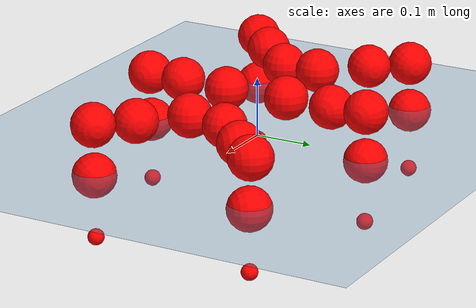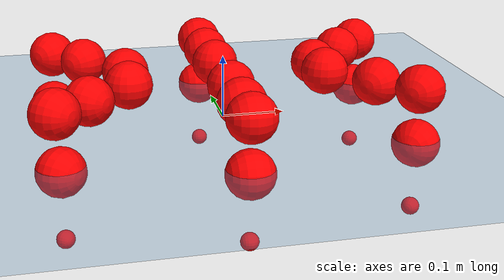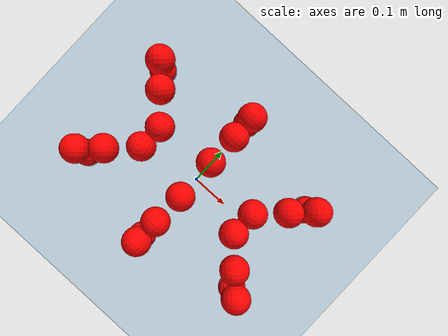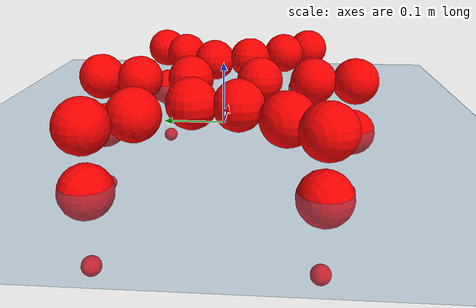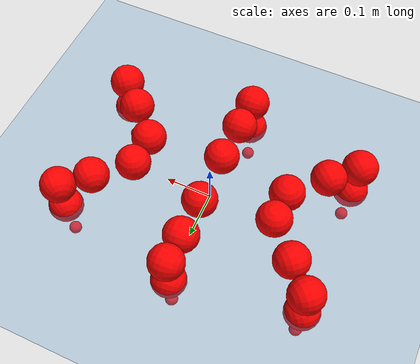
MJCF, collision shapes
<mujoco model="Golem">
  <compiler angle="radian" assetdir="assets" balanceinertia="true" inertiafromgeom="false"/>

  <option timestep="0.005" density="1.2" viscosity="2e-05"/>

  <size nkey="1"/>

  <visual>
    <quality shadowsize="8192"/>
    <map shadowclip="0.5"/>
  </visual>

  <default>
    <default class="/">
      <joint armature="0.01" damping="0.01" frictionloss="0.01"/>
      <geom contype="0" conaffinity="0" group="1" solref="-1000 -80"/>
      <site size="0.01 0.005 0.005" group="5"/>
      <general forcelimited="true" biastype="affine" gainprm="25" biasprm="0 -25 -0.5"/>
      <default class="visual">
        <geom type="mesh" group="2"/>
      </default>
      <default class="collision">
        <geom group="3"/>
      </default>
      <default class="foot">
        <geom size="0.01 0 0" condim="6" group="4" priority="1" solimp="0.015 1 0.01"/>
      </default>
      <default class="reward_collision_sphere">
        <geom group="5" rgba="1 0 0 1"/>
      </default>
    </default>
  </default>

  <asset>
    <texture type="skybox" colorspace="auto" name="//unnamed_texture_0" builtin="gradient" rgb1="0.95 0.95 0.95" rgb2="0.95 0.95 0.95" width="100" height="600"/>
    <texture type="2d" colorspace="auto" name="texplane" builtin="checker" rgb1="0.345 0.575 0.748" rgb2="0.345 0.575 0.748" markrgb="1 1 1" width="512" height="512"/>
    <material name="MatPlane" class="/" texture="texplane" texuniform="true" texrepeat="2 2" specular="0.9"/>
    <mesh name="body" class="/" file="body.stl" scale="0.001 0.001 0.001"/>
    <mesh name="coxa" class="/" file="coxa.stl" scale="0.001 0.001 0.001"/>
    <mesh name="femur" class="/" file="femur.stl" scale="0.001 0.001 0.001"/>
    <mesh name="tibia" class="/" file="tibia.stl" scale="0.001 0.001 0.001"/>
    <mesh name="tarsus" class="/" file="tarsus.stl" scale="0.001 0.001 0.001"/>
  </asset>

  <worldbody>
    <geom name="floor" class="/" size="100 100 0.125" type="plane" group="0" material="MatPlane"/>
    <light name="toplight_shadow" class="/" pos="0 0 5" dir="0.0990148 0.0990148 -0.990148" type="directional" ambient="0.04 0.04 0.04" diffuse="0.55 0.55 0.55" specular="0.12 0.12 0.12"/>
    <light name="toplight_fill" class="/" pos="0 0 5" dir="0.0990148 0.0990148 -0.990148" type="directional" castshadow="false" ambient="0.04 0.04 0.04" diffuse="0.3 0.3 0.3" specular="0.08 0.08 0.08"/>
    <body name="trunk" pos="0.00105749 -0.00107535 0.000803252" quat="1 0.000395352 2.02677e-05 2.25357e-05">
      <inertial pos="0.00300132 -0.00103659 -0.00141902" quat="0.999974 -0.00553701 0.00141315 0.00436423" mass="3.0956" diaginertia="0.0104544 0.00110543 0.0211578"/>
      <joint name="//unnamed_joint_0" type="free"/>
      <geom name="//unnamed_geom_1" class="/" pos="0 0 0.0734904" quat="1 0 0 0" type="mesh" rgba="0.9 0.9 0.9 1" mesh="body"/>
      <site name="imu" class="/" pos="0.127554 -0.00516973 0.101249" size="0.00928628"/>
      <camera name="track" class="/" pos="0 -1.28286 0" quat="0.707107 0.707107 0 0" mode="trackcom"/>
      <camera name="ego_camera" class="/" pos="0.129502 0 0.114829" quat="-0.5 -0.5 0.5 0.5"/>
      <body name="coxa_RR" pos="-0.176123 -0.0530487 0.0733845" quat="0.382684 8.95312e-07 2.45664e-07 -0.923879">
        <inertial pos="0.000424511 -0.00148022 0.000727211" quat="0.999999 -0.000126912 0.000140478 -0.000988118" mass="0.158359" diaginertia="0.00959094 0.00104727 0.0196992"/>
        <joint name="coxa_joint_RR" class="/" pos="0 0 0" axis="0.00816392 -0.00201679 -0.999965" range="-3.18113 3.13561" armature="0.0089253" damping="0" frictionloss="0.00938397"/>
        <geom name="//unnamed_geom_2" class="/" type="mesh" rgba="0.2 0.2 0.2 1" mesh="coxa"/>
        <geom name="//unnamed_geom_3" class="reward_collision_sphere" size="0.0371451" pos="-0.029885 0 0"/>
        <body name="femur_RR" pos="0.0621362 0.00125198 0.00174927" quat="0.500369 -0.500177 0.500104 0.499349">
          <inertial pos="-0.000851528 0.000187033 -0.00168174" quat="0.999997 -0.000105895 0.00209826 -0.00156919" mass="0.156686" diaginertia="0.00979124 0.00105565 0.0196048"/>
          <joint name="femur_joint_RR" class="/" pos="0 0 0" axis="-0.0086246 -0.0120374 -0.99989" stiffness="0.00153049" range="-3.1404 3.13549" armature="0.00931687" damping="0.0030276" frictionloss="0.0096473"/>
          <geom name="//unnamed_geom_4" class="/" type="mesh" rgba="0.9 0.9 0.9 1" mesh="femur"/>
          <geom name="//unnamed_geom_5" class="reward_collision_sphere" size="0.0371451"/>
          <body name="tibia_RR" pos="-0.00169071 -0.069314 -0.00164852" quat="-2.91479e-06 1 6.21915e-07 3.48941e-06">
            <inertial pos="0.000184229 -0.00252236 -0.000121133" quat="0.999915 -0.0102546 0.00468742 0.00658328" mass="0.159975" diaginertia="0.0100882 0.00107559 0.0196146"/>
            <joint name="tibia_joint_RR" class="/" pos="0 0 0" axis="0.012623 -0.00281144 0.999916" range="-3.09572 3.15443" armature="0.00912947" damping="0.0134361" frictionloss="0.00917732"/>
            <geom name="//unnamed_geom_6" class="/" type="mesh" rgba="0.2 0.2 0.2 1" mesh="tibia"/>
            <geom name="//unnamed_geom_7" class="reward_collision_sphere" size="0.0371451"/>
            <body name="tarsus_RR" pos="0.0881672 -0.00253384 -0.00216246" quat="1 -0.000678373 -0.000363827 -1.71176e-05">
              <inertial pos="0.0597642 7.27551e-05 -0.00228494" quat="0.507198 0.48911 0.504359 0.499142" mass="0.165967" diaginertia="0.00999193 0.00110989 0.0193888"/>
              <joint name="tarsus_joint_RR" class="/" pos="0 0 0" axis="0.00081136 -0.0025664 0.999996" range="-3.18278 3.15936" armature="0.00948174" damping="0" frictionloss="0.0105054"/>
              <geom name="//unnamed_geom_8" class="/" type="mesh" rgba="0.9 0.9 0.9 1" mesh="tarsus"/>
              <geom name="foot_1" class="foot" size="0.00972259" pos="0.111571 0 0" quat="0 -0.707107 0 0.707107"/>
              <geom name="//unnamed_geom_10" class="reward_collision_sphere" size="0.0371451"/>
              <geom name="//unnamed_geom_11" class="reward_collision_sphere" size="0.0139294" pos="0.107088 0 0"/>
              <site name="foot_1" class="foot" pos="0.111571 0 0" quat="0 -0.707107 0 0.707107" size="0.00928628"/>
            </body>
          </body>
        </body>
      </body>
      <body name="coxa_RM" pos="-0.00088544 -0.0874811 0.0722027" quat="0.707381 0.000862053 0.000425065 -0.706832">
        <inertial pos="0.00256606 0.000637252 -0.00233528" quat="1 -0.000304108 0.000154947 0.000246454" mass="0.161202" diaginertia="0.00976007 0.00112119 0.0199795"/>
        <joint name="coxa_joint_RM" class="/" pos="0 0 0" axis="-0.00241207 0.00463757 -0.999986" range="-3.14426 3.13727" armature="0.0104774" damping="0.0164786" frictionloss="0.00934899"/>
        <geom name="//unnamed_geom_12" class="/" type="mesh" rgba="0.2 0.2 0.2 1" mesh="coxa"/>
        <geom name="//unnamed_geom_13" class="reward_collision_sphere" size="0.0371451" pos="-0.029885 0 0"/>
        <body name="femur_RM" pos="0.0563515 -0.00316924 0.00153409" quat="0.499861 -0.499525 0.500566 0.500048">
          <inertial pos="0.00259773 -0.00212085 0.000335262" quat="1 -0.000297887 0.000102206 -0.000260976" mass="0.154979" diaginertia="0.00914663 0.0010442 0.018638"/>
          <joint name="femur_joint_RM" class="/" pos="0 0 0" axis="0.0111219 -0.00281866 -0.999934" stiffness="0.00116702" range="-3.13441 3.08422" armature="0.00898119" damping="0.0235008" frictionloss="0.00860313"/>
          <geom name="//unnamed_geom_14" class="/" type="mesh" rgba="0.9 0.9 0.9 1" mesh="femur"/>
          <geom name="//unnamed_geom_15" class="reward_collision_sphere" size="0.0371451"/>
          <body name="tibia_RM" pos="-0.00112143 -0.0667279 -0.00120956" quat="0.00047488 1 -0.000526001 -0.00062685">
            <inertial pos="-0.00197262 0.00249806 -0.000376331" quat="0.999959 -0.00685213 0.00587317 -0.000803893" mass="0.154751" diaginertia="0.00961516 0.00106433 0.0195149"/>
            <joint name="tibia_joint_RM" class="/" pos="0 0 0" axis="-0.00319811 -0.00328043 0.99999" range="-3.13254 3.17938" armature="0.00946536" damping="0.0210997" frictionloss="0.00922142"/>
            <geom name="//unnamed_geom_16" class="/" type="mesh" rgba="0.2 0.2 0.2 1" mesh="tibia"/>
            <geom name="//unnamed_geom_17" class="reward_collision_sphere" size="0.0371451"/>
            <body name="tarsus_RM" pos="0.0851675 -0.000787532 0.000674878" quat="1 -1.44838e-05 8.87974e-05 5.95679e-05">
              <inertial pos="0.0625355 0.000459709 -0.000154497" quat="0.498995 0.49974 0.499845 0.501417" mass="0.164662" diaginertia="0.00979855 0.00107905 0.0205828"/>
              <joint name="tarsus_joint_RM" class="/" pos="0 0 0" axis="-0.00303662 -0.00279398 0.999991" range="-3.19094 3.08437" armature="0.00939863" damping="0.00574932" frictionloss="0.00809063"/>
              <geom name="//unnamed_geom_18" class="/" type="mesh" rgba="0.9 0.9 0.9 1" mesh="tarsus"/>
              <geom name="foot_2" class="foot" size="0.0100919" pos="0.111571 0 0" quat="0 -0.707107 0 0.707107"/>
              <geom name="//unnamed_geom_20" class="reward_collision_sphere" size="0.0371451"/>
              <geom name="//unnamed_geom_21" class="reward_collision_sphere" size="0.0139294" pos="0.107088 0 0"/>
              <site name="foot_2" class="foot" pos="0.111571 0 0" quat="0 -0.707107 0 0.707107" size="0.00928628"/>
            </body>
          </body>
        </body>
      </body>
      <body name="coxa_RF" pos="0.177265 -0.0564198 0.0768019" quat="0.923782 1.33503e-05 0.000102199 -0.38292">
        <inertial pos="0.00106328 -0.00275827 0.00273662" quat="0.999906 0.000559483 -0.00667845 0.0119407" mass="0.150238" diaginertia="0.00948768 0.00105571 0.0193858"/>
        <joint name="coxa_joint_RF" class="/" pos="0 0 0" axis="-0.00724578 0.00710421 -0.999949" range="-3.08538 3.16445" armature="0.00799518" damping="0" frictionloss="0.00904017"/>
        <geom name="//unnamed_geom_22" class="/" type="mesh" rgba="0.2 0.2 0.2 1" mesh="coxa"/>
        <geom name="//unnamed_geom_23" class="reward_collision_sphere" size="0.0371451" pos="-0.029885 0 0"/>
        <body name="femur_RF" pos="0.0595496 -0.00139966 -0.00118895" quat="0.499955 -0.500149 0.499796 0.500099">
          <inertial pos="-0.00240838 0.00260737 0.000209635" quat="0.999997 0.00225228 0.000729055 0.000975907" mass="0.159652" diaginertia="0.0100014 0.0011268 0.0206901"/>
          <joint name="femur_joint_RF" class="/" pos="0 0 0" axis="0.00291493 0.00145866 -0.999995" range="-3.13287 3.11613" armature="0.00920137" damping="0.00380882" frictionloss="0.00878377"/>
          <geom name="//unnamed_geom_24" class="/" type="mesh" rgba="0.9 0.9 0.9 1" mesh="femur"/>
          <geom name="//unnamed_geom_25" class="reward_collision_sphere" size="0.0371451"/>
          <body name="tibia_RF" pos="-0.000315342 -0.0708605 0.000428664" quat="3.49896e-06 1 4.32682e-06 3.59286e-06">
            <inertial pos="-9.0681e-05 0.000360686 -0.00254254" quat="0.999905 0.00818495 -0.0107292 -0.00275906" mass="0.159946" diaginertia="0.00996069 0.00105405 0.0207329"/>
            <joint name="tibia_joint_RF" class="/" pos="0 0 0" axis="0.0014154 -0.000911835 0.999999" range="-3.14837 3.16767" armature="0.00950585" damping="0.00498379" frictionloss="0.0100321"/>
            <geom name="//unnamed_geom_26" class="/" type="mesh" rgba="0.2 0.2 0.2 1" mesh="tibia"/>
            <geom name="//unnamed_geom_27" class="reward_collision_sphere" size="0.0371451"/>
            <body name="tarsus_RF" pos="0.0869243 -0.000397983 0.000305586" quat="0.999999 0.000798837 0.000962658 -0.000152562">
              <inertial pos="0.059 -0.00089727 -0.000589058" quat="0.501746 0.500468 0.498498 0.499282" mass="0.163895" diaginertia="0.0100911 0.00107247 0.0197676"/>
              <joint name="tarsus_joint_RF" class="/" pos="0 0 0" axis="0.00181903 -0.008554 0.999962" stiffness="0.023031" range="-3.08831 3.14057" armature="0.00867396" damping="0" frictionloss="0.0087865"/>
              <geom name="//unnamed_geom_28" class="/" type="mesh" rgba="0.9 0.9 0.9 1" mesh="tarsus"/>
              <geom name="foot_3" class="foot" size="0.00933001" pos="0.111571 0 0" quat="0 -0.707107 0 0.707107"/>
              <geom name="//unnamed_geom_30" class="reward_collision_sphere" size="0.0371451"/>
              <geom name="//unnamed_geom_31" class="reward_collision_sphere" size="0.0139294" pos="0.107088 0 0"/>
              <site name="foot_3" class="foot" pos="0.111571 0 0" quat="0 -0.707107 0 0.707107" size="0.00928628"/>
            </body>
          </body>
        </body>
      </body>
      <body name="coxa_LR" pos="-0.174441 0.0548181 0.074397" quat="0.382714 7.47617e-05 7.72736e-05 0.923867">
        <inertial pos="-0.00220679 -0.00294936 0.00093524" quat="0.999919 0.00636967 0.00992374 0.00476946" mass="0.153197" diaginertia="0.00979732 0.00102056 0.0187629"/>
        <joint name="coxa_joint_LR" class="/" pos="0 0 0" axis="5.38707e-05 -9.98161e-05 -1" stiffness="0.00305814" range="-3.17096 3.15755" armature="0.00955774" damping="0.0173256" frictionloss="0.00930413"/>
        <geom name="//unnamed_geom_32" class="/" type="mesh" rgba="0.2 0.2 0.2 1" mesh="coxa"/>
        <geom name="//unnamed_geom_33" class="reward_collision_sphere" size="0.0371451" pos="-0.029885 0 0"/>
        <body name="femur_LR" pos="0.0617296 -0.00421602 0.000588181" quat="0.499764 -0.499991 0.500111 0.500134">
          <inertial pos="-0.000751675 -0.00235298 -0.00115526" quat="1 0.000417551 0.000352516 -0.000215171" mass="0.158736" diaginertia="0.00946617 0.00111456 0.0192937"/>
          <joint name="femur_joint_LR" class="/" pos="0 0 0" axis="-0.000865542 -0.000383771 1" range="-3.08517 3.14764" armature="0.00964427" damping="0.00325798" frictionloss="0.00929396"/>
          <geom name="//unnamed_geom_34" class="/" type="mesh" rgba="0.9 0.9 0.9 1" mesh="femur"/>
          <geom name="//unnamed_geom_35" class="reward_collision_sphere" size="0.0371451"/>
          <body name="tibia_LR" pos="0.000745179 -0.07294 -0.00302391" quat="-0.000409019 1 -0.000532199 0.000426512">
            <inertial pos="0.00159066 -0.00258876 -0.000821774" quat="0.999905 0.00809871 -0.0108395 -0.00260139" mass="0.156373" diaginertia="0.00936905 0.0010486 0.0197363"/>
            <joint name="tibia_joint_LR" class="/" pos="0 0 0" axis="-0.00279096 0.00149543 -0.999995" range="-3.1093 3.19409" armature="0.00913063" damping="0" frictionloss="0.00923092"/>
            <geom name="//unnamed_geom_36" class="/" type="mesh" rgba="0.2 0.2 0.2 1" mesh="tibia"/>
            <geom name="//unnamed_geom_37" class="reward_collision_sphere" size="0.0371451"/>
            <body name="tarsus_LR" pos="0.0863925 0.00157507 -0.00198838" quat="0.999999 0.000145217 -0.000147897 0.00115487">
              <inertial pos="0.0616026 -0.00235781 -0.00257513" quat="0.500674 0.500585 0.500813 0.497922" mass="0.161388" diaginertia="0.00989638 0.0010696 0.0193188"/>
              <joint name="tarsus_joint_LR" class="/" pos="0 0 0" axis="-0.0140998 0.00625638 -0.999881" range="-3.15271 3.1022" armature="0.008211" damping="0" frictionloss="0.00844882"/>
              <geom name="//unnamed_geom_38" class="/" type="mesh" rgba="0.9 0.9 0.9 1" mesh="tarsus"/>
              <geom name="foot_4" class="foot" size="0.0101644" pos="0.111571 0 0" quat="0.707107 0 -0.707107 0"/>
              <geom name="//unnamed_geom_40" class="reward_collision_sphere" size="0.0371451"/>
              <geom name="//unnamed_geom_41" class="reward_collision_sphere" size="0.0139294" pos="0.107088 0 0"/>
              <site name="foot_4" class="foot" pos="0.111571 0 0" quat="0.707107 0 -0.707107 0" size="0.00928628"/>
            </body>
          </body>
        </body>
      </body>
      <body name="coxa_LM" pos="-0.00317226 0.084739 0.073833" quat="0.706953 4.07714e-05 0.00020969 0.707261">
        <inertial pos="0.000632863 -0.00242997 0.000601066" quat="0.999905 -0.0113141 0.00544795 0.00571388" mass="0.159724" diaginertia="0.0100793 0.00111721 0.0205121"/>
        <joint name="coxa_joint_LM" class="/" pos="0 0 0" axis="0.0074628 -0.00911925 -0.999931" range="-3.12866 3.12059" armature="0.00913252" damping="0.0138383" frictionloss="0.0101637"/>
        <geom name="//unnamed_geom_42" class="/" type="mesh" rgba="0.2 0.2 0.2 1" mesh="coxa"/>
        <geom name="//unnamed_geom_43" class="reward_collision_sphere" size="0.0371451" pos="-0.029885 0 0"/>
        <body name="femur_LM" pos="0.0544323 -0.000135025 -0.00154757" quat="0.499888 -0.500136 0.499715 0.500261">
          <inertial pos="0.00229593 0.000782831 0.000646233" quat="0.99992 0.00539237 -0.00771675 -0.0084887" mass="0.166654" diaginertia="0.00977569 0.00115743 0.0207004"/>
          <joint name="femur_joint_LM" class="/" pos="0 0 0" axis="-0.00340885 -0.000766085 0.999994" range="-3.15051 3.13047" armature="0.00991686" damping="0.00926835" frictionloss="0.00822348"/>
          <geom name="//unnamed_geom_44" class="/" type="mesh" rgba="0.9 0.9 0.9 1" mesh="femur"/>
          <geom name="//unnamed_geom_45" class="reward_collision_sphere" size="0.0371451"/>
          <body name="tibia_LM" pos="-0.00224188 -0.063811 -2.87684e-05" quat="-0.000373704 0.999999 -0.000741708 -0.000912015">
            <inertial pos="0.00193389 0.000338713 -0.00276308" quat="0.999905 0.00180383 -0.000723527 0.0136583" mass="0.162159" diaginertia="0.00990088 0.00113479 0.020388"/>
            <joint name="tibia_joint_LM" class="/" pos="0 0 0" axis="-0.00844817 -0.00411398 -0.999956" range="-3.13892 3.14087" armature="0.00933657" damping="0.00149636" frictionloss="0.00804878"/>
            <geom name="//unnamed_geom_46" class="/" type="mesh" rgba="0.2 0.2 0.2 1" mesh="tibia"/>
            <geom name="//unnamed_geom_47" class="reward_collision_sphere" size="0.0371451"/>
            <body name="tarsus_LM" pos="0.0847817 0.000426286 -0.000402605" quat="0.999999 0.00108843 0.000229428 -0.000461075">
              <inertial pos="0.0601931 -0.000273706 0.00154636" quat="0.491093 0.508195 0.504902 0.49562" mass="0.167054" diaginertia="0.0101904 0.00109101 0.0201478"/>
              <joint name="tarsus_joint_LM" class="/" pos="0 0 0" axis="0.00959011 -0.00568131 -0.999938" stiffness="0.00778857" range="-3.15009 3.14482" armature="0.00936535" damping="0" frictionloss="0.0105682"/>
              <geom name="//unnamed_geom_48" class="/" type="mesh" rgba="0.9 0.9 0.9 1" mesh="tarsus"/>
              <geom name="foot_5" class="foot" size="0.00939413" pos="0.111571 0 0" quat="0.707107 0 -0.707107 0"/>
              <geom name="//unnamed_geom_50" class="reward_collision_sphere" size="0.0371451"/>
              <geom name="//unnamed_geom_51" class="reward_collision_sphere" size="0.0139294" pos="0.107088 0 0"/>
              <site name="foot_5" class="foot" pos="0.111571 0 0" quat="0.707107 0 -0.707107 0" size="0.00928628"/>
            </body>
          </body>
        </body>
      </body>
      <body name="coxa_LF" pos="0.179762 0.0523332 0.0719875" quat="0.923979 -0.000309544 0.000203537 0.382444">
        <inertial pos="0.000163097 -4.19605e-05 0.00285684" quat="0.999922 0.00583125 0.00695585 -0.00858179" mass="0.155652" diaginertia="0.00944062 0.00111935 0.0193665"/>
        <joint name="coxa_joint_LF" class="/" pos="0 0 0" axis="0.00126123 -0.0167094 -0.99986" range="-3.1178 3.14513" armature="0.00797493" damping="0" frictionloss="0.0103783"/>
        <geom name="//unnamed_geom_52" class="/" type="mesh" rgba="0.2 0.2 0.2 1" mesh="coxa"/>
        <geom name="//unnamed_geom_53" class="reward_collision_sphere" size="0.0371451" pos="-0.029885 0 0"/>
        <body name="femur_LF" pos="0.0584758 3.27175e-05 0.000808683" quat="0.500225 -0.500027 0.499786 0.499962">
          <inertial pos="-0.00250668 -0.000932011 0.00229459" quat="0.999999 -0.000305008 0.000863163 0.00116566" mass="0.158593" diaginertia="0.0101772 0.00107756 0.0200016"/>
          <joint name="femur_joint_LF" class="/" pos="0 0 0" axis="-3.59408e-05 -1.54582e-05 1" range="-3.13329 3.13801" armature="0.0101681" damping="0.00522718" frictionloss="0.00888687"/>
          <geom name="//unnamed_geom_54" class="/" type="mesh" rgba="0.9 0.9 0.9 1" mesh="femur"/>
          <geom name="//unnamed_geom_55" class="reward_collision_sphere" size="0.0371451"/>
          <body name="tibia_LF" pos="-0.000643406 -0.0688049 -0.000596176" quat="-0.0007153 1 -8.2033e-05 -0.000513957">
            <inertial pos="-0.00061864 -0.0021761 0.00117898" quat="1 -8.48697e-05 -0.000695495 -4.18325e-05" mass="0.156273" diaginertia="0.0092229 0.00105884 0.0193589"/>
            <joint name="tibia_joint_LF" class="/" pos="0 0 0" axis="0.000312384 0.000106176 -1" range="-3.14963 3.12185" armature="0.0104689" damping="0" frictionloss="0.00954113"/>
            <geom name="//unnamed_geom_56" class="/" type="mesh" rgba="0.2 0.2 0.2 1" mesh="tibia"/>
            <geom name="//unnamed_geom_57" class="reward_collision_sphere" size="0.0371451"/>
            <body name="tarsus_LF" pos="0.0852377 -0.000219842 0.00200506" quat="1 -0.000442551 -0.000168359 6.54125e-06">
              <inertial pos="0.0592061 0.0022288 0.00101049" quat="0.495867 0.508776 0.498231 0.49702" mass="0.150257" diaginertia="0.00954236 0.00101748 0.0195191"/>
              <joint name="tarsus_joint_LF" class="/" pos="0 0 0" axis="-0.00248477 0.00347154 -0.999991" range="-3.15869 3.14229" armature="0.0106261" damping="0.00769783" frictionloss="0.00810379"/>
              <geom name="//unnamed_geom_58" class="/" type="mesh" rgba="0.9 0.9 0.9 1" mesh="tarsus"/>
              <geom name="foot_6" class="foot" size="0.00927067" pos="0.111571 0 0" quat="0.707107 0 -0.707107 0"/>
              <geom name="//unnamed_geom_60" class="reward_collision_sphere" size="0.0371451"/>
              <geom name="//unnamed_geom_61" class="reward_collision_sphere" size="0.0139294" pos="0.107088 0 0"/>
              <site name="foot_6" class="foot" pos="0.111571 0 0" quat="0.707107 0 -0.707107 0" size="0.00928628"/>
            </body>
          </body>
        </body>
      </body>
    </body>
  </worldbody>

  <contact>
    <pair class="/" geom1="floor" geom2="foot_1" name="//unnamed_contact_0"/>
    <pair class="/" geom1="floor" geom2="foot_2" name="//unnamed_contact_1"/>
    <pair class="/" geom1="floor" geom2="foot_3" name="//unnamed_contact_2"/>
    <pair class="/" geom1="floor" geom2="foot_4" name="//unnamed_contact_3"/>
    <pair class="/" geom1="floor" geom2="foot_5" name="//unnamed_contact_4"/>
    <pair class="/" geom1="floor" geom2="foot_6" name="//unnamed_contact_5"/>
  </contact>

  <actuator>
    <general name="coxa_joint_RR" class="/" joint="coxa_joint_RR" forcerange="-6.77308 6.77308" gainprm="23.7757" biasprm="0 -23.7757 -0.484048"/>
    <general name="femur_joint_RR" class="/" joint="femur_joint_RR" forcerange="-6.92495 6.92495" gainprm="23.7757" biasprm="0 -23.7757 -0.484048"/>
    <general name="tibia_joint_RR" class="/" joint="tibia_joint_RR" forcerange="-6.91186 6.91186" gainprm="23.7757" biasprm="0 -23.7757 -0.484048"/>
    <general name="tarsus_joint_RR" class="/" joint="tarsus_joint_RR" forcerange="-7.48238 7.48238" gainprm="23.7757" biasprm="0 -23.7757 -0.484048"/>
    <general name="coxa_joint_RM" class="/" joint="coxa_joint_RM" forcerange="-6.6116 6.6116" gainprm="23.7757" biasprm="0 -23.7757 -0.484048"/>
    <general name="femur_joint_RM" class="/" joint="femur_joint_RM" forcerange="-6.76792 6.76792" gainprm="23.7757" biasprm="0 -23.7757 -0.484048"/>
    <general name="tibia_joint_RM" class="/" joint="tibia_joint_RM" forcerange="-6.79355 6.79355" gainprm="23.7757" biasprm="0 -23.7757 -0.484048"/>
    <general name="tarsus_joint_RM" class="/" joint="tarsus_joint_RM" forcerange="-7.44863 7.44863" gainprm="23.7757" biasprm="0 -23.7757 -0.484048"/>
    <general name="coxa_joint_RF" class="/" joint="coxa_joint_RF" forcerange="-7.15116 7.15116" gainprm="23.7757" biasprm="0 -23.7757 -0.484048"/>
    <general name="femur_joint_RF" class="/" joint="femur_joint_RF" forcerange="-6.09046 6.09046" gainprm="23.7757" biasprm="0 -23.7757 -0.484048"/>
    <general name="tibia_joint_RF" class="/" joint="tibia_joint_RF" forcerange="-7.30809 7.30809" gainprm="23.7757" biasprm="0 -23.7757 -0.484048"/>
    <general name="tarsus_joint_RF" class="/" joint="tarsus_joint_RF" forcerange="-6.19599 6.19599" gainprm="23.7757" biasprm="0 -23.7757 -0.484048"/>
    <general name="coxa_joint_LR" class="/" joint="coxa_joint_LR" forcerange="-6.32291 6.32291" gainprm="23.7757" biasprm="0 -23.7757 -0.484048"/>
    <general name="femur_joint_LR" class="/" joint="femur_joint_LR" forcerange="-6.88588 6.88588" gainprm="23.7757" biasprm="0 -23.7757 -0.484048"/>
    <general name="tibia_joint_LR" class="/" joint="tibia_joint_LR" forcerange="-6.81484 6.81484" gainprm="23.7757" biasprm="0 -23.7757 -0.484048"/>
    <general name="tarsus_joint_LR" class="/" joint="tarsus_joint_LR" forcerange="-6.31538 6.31538" gainprm="23.7757" biasprm="0 -23.7757 -0.484048"/>
    <general name="coxa_joint_LM" class="/" joint="coxa_joint_LM" forcerange="-7.05246 7.05246" gainprm="23.7757" biasprm="0 -23.7757 -0.484048"/>
    <general name="femur_joint_LM" class="/" joint="femur_joint_LM" forcerange="-6.2541 6.2541" gainprm="23.7757" biasprm="0 -23.7757 -0.484048"/>
    <general name="tibia_joint_LM" class="/" joint="tibia_joint_LM" forcerange="-6.71376 6.71376" gainprm="23.7757" biasprm="0 -23.7757 -0.484048"/>
    <general name="tarsus_joint_LM" class="/" joint="tarsus_joint_LM" forcerange="-7.0451 7.0451" gainprm="23.7757" biasprm="0 -23.7757 -0.484048"/>
    <general name="coxa_joint_LF" class="/" joint="coxa_joint_LF" forcerange="-6.07838 6.07838" gainprm="23.7757" biasprm="0 -23.7757 -0.484048"/>
    <general name="femur_joint_LF" class="/" joint="femur_joint_LF" forcerange="-6.31804 6.31804" gainprm="23.7757" biasprm="0 -23.7757 -0.484048"/>
    <general name="tibia_joint_LF" class="/" joint="tibia_joint_LF" forcerange="-7.23075 7.23075" gainprm="23.7757" biasprm="0 -23.7757 -0.484048"/>
    <general name="tarsus_joint_LF" class="/" joint="tarsus_joint_LF" forcerange="-6.77282 6.77282" gainprm="23.7757" biasprm="0 -23.7757 -0.484048"/>
  </actuator>

  <sensor>
    <gyro site="imu" name="imu_angular_velocity"/>
    <velocimeter site="imu" name="imu_linear_velocity"/>
    <framelinvel objtype="site" objname="foot_1" name="foot_1_global_linear_velocity"/>
    <framelinvel objtype="site" objname="foot_2" name="foot_2_global_linear_velocity"/>
    <framelinvel objtype="site" objname="foot_3" name="foot_3_global_linear_velocity"/>
    <framelinvel objtype="site" objname="foot_4" name="foot_4_global_linear_velocity"/>
    <framelinvel objtype="site" objname="foot_5" name="foot_5_global_linear_velocity"/>
    <framelinvel objtype="site" objname="foot_6" name="foot_6_global_linear_velocity"/>
  </sensor>

  <keyframe>
    <key name="home" qpos="0 0 0.1457 1 0 0 0 0 0 0 0 0 0 0 0 0 0 0 0 0 0 0 0 0 0 0 0 0 0 0 0"/>
  </keyframe>
</mujoco>
